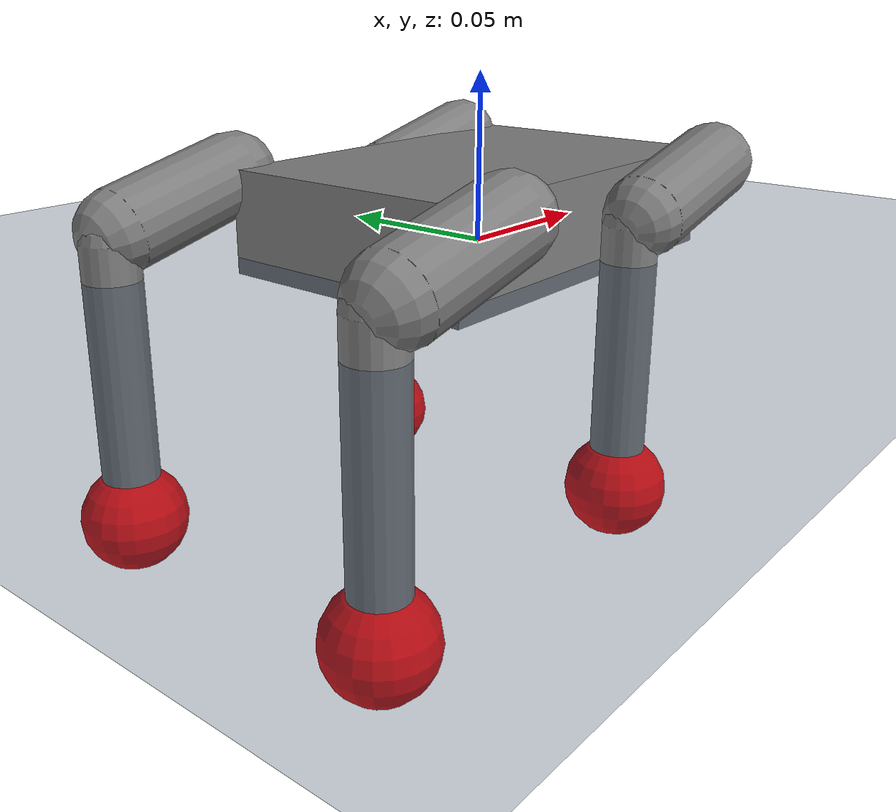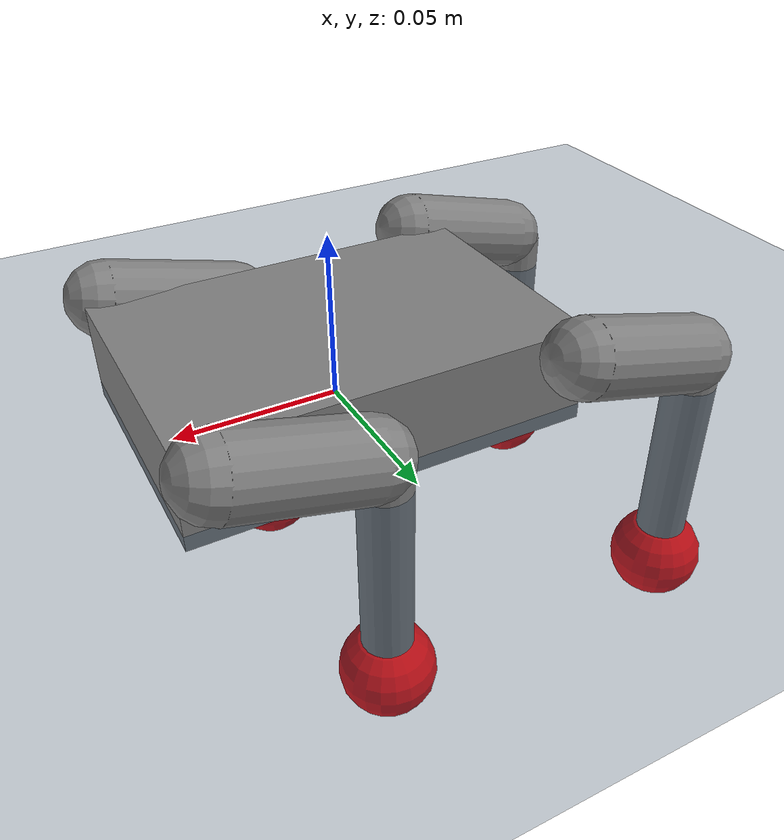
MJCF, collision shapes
<mujoco model="bittle_scene">
  <include file="bittle_adapted.xml"/>

  <statistic center="0 0 0.08" extent="0.6"/>

  <visual>
    <headlight diffuse="0.6 0.6 0.6" ambient="0.3 0.3 0.3" specular="0 0 0"/>
    <rgba haze="0.15 0.25 0.35 1"/>
    <global azimuth="120" elevation="-20"/>
  </visual>

  <asset>
    <texture type="skybox" builtin="gradient" rgb1="0.3 0.5 0.7" rgb2="0 0 0" width="512" height="3072"/>
    <texture type="2d" name="groundplane" builtin="checker" mark="edge" rgb1="0.2 0.3 0.4" rgb2="0.1 0.2 0.3"
      markrgb="0.8 0.8 0.8" width="300" height="300"/>
    <material name="groundplane" texture="groundplane" texuniform="true" texrepeat="5 5" reflectance="0.2"/>
  </asset>

  <worldbody>
    <light pos="0 0 1.5" dir="0 0 -1" directional="true"/>
    <camera name="track" pos="0.6 -0.8 0.4" xyaxes="0.866 0.500 0.000 -0.171 0.296 0.940" mode="trackcom"/>
    <camera name="default" pos="0.4 -0.6 0.3" xyaxes="0.866 0.500 0.000 -0.171 0.296 0.940"/>
    <geom name="floor" size="0 0 0.05" type="plane" material="groundplane"/>
  </worldbody>

  <!-- Home keyframe with standing pose -->
  <keyframe>
    <key name="home"
      qpos="0 0 0.15
            1 0 0 0
            0.0 0.8
            0.0 0.8
            0.0 0.8
            0.0 0.8
            0.0"
      ctrl="0.0 0.8
            0.0 0.8
            0.0 0.8
            0.0 0.8
            0.0"/>
  </keyframe>
</mujoco>

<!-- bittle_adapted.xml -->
<mujoco model="bittle_adapted">
  <compiler angle="radian" meshdir="../assets/descriptions/bittle/meshes/stl/" autolimits="true"/>

  <option iterations="1" ls_iterations="5">
    <flag eulerdamp="disable"/>
  </option>

  <!-- Default classes for organized parameters -->
  <default>
    <default class="bittle">
      <geom contype="0" conaffinity="0" type="mesh"/>

      <!-- Collision geometry defaults -->
      <default class="bittle/collision">
        <geom group="3" contype="1" conaffinity="1"/>
        <default class="bittle/collision/foot">
          <geom type="sphere" size="0.015" rgba="1 0 0 1"
                solimp="0.015 1 0.031" friction="0.8 0.02 0.01"/>
        </default>
      </default>

      <!-- Joint defaults -->
      <joint damping="0.15" armature="0.008"/>

      <!-- Actuator defaults -->
      <general forcerange="-5 5" biastype="affine"
               gainprm="15.0 0 0" biasprm="0 -15.0 -0.5"/>

      <!-- Shoulder joints (abduction-like) -->
      <default class="bittle/shoulder">
        <joint range="-0.7 0.7"/>
        <general ctrlrange="-0.6 0.6"/>
      </default>

      <!-- Thigh joints (hip-like) -->
      <default class="bittle/thigh">
        <joint range="-1.5 1.5"/>
        <general ctrlrange="-1.4 1.4"/>
      </default>
    </default>
  </default>

  <asset>
    <mesh name="base_link" content_type="model/stl" file="base_link.stl" scale="0.001 0.001 0.001"/>
    <mesh name="front__1" content_type="model/stl" file="front__1.stl" scale="0.001 0.001 0.001"/>
    <mesh name="rear__1" content_type="model/stl" file="rear__1.stl" scale="0.001 0.001 0.001"/>
    <mesh name="servo_rfs_1" content_type="model/stl" file="servo_rfs_1.stl" scale="0.001 0.001 0.001"/>
    <mesh name="servo_rrs__1" content_type="model/stl" file="servo_rrs__1.stl" scale="0.001 0.001 0.001"/>
    <mesh name="c_neck__1" content_type="model/stl" file="c_neck__1.stl" scale="0.001 0.001 0.001"/>
    <mesh name="head__1" content_type="model/stl" file="head__1.stl" scale="0.001 0.001 0.001"/>
    <mesh name="jaw_1" content_type="model/stl" file="jaw_1.stl" scale="0.001 0.001 0.001"/>
    <mesh name="tho_rf__1" content_type="model/stl" file="tho_rf__1.stl" scale="0.001 0.001 0.001"/>
    <mesh name="servo_neck__1" content_type="model/stl" file="servo_neck__1.stl" scale="0.001 0.001 0.001"/>
    <mesh name="tube__1" content_type="model/stl" file="tube__1.stl" scale="0.001 0.001 0.001"/>
    <mesh name="th_rf_1" content_type="model/stl" file="th_rf_1.stl" scale="0.001 0.001 0.001"/>
    <mesh name="c_thorf_1" content_type="model/stl" file="c_thorf_1.stl" scale="0.001 0.001 0.001"/>
    <mesh name="servo_lfs_1" content_type="model/stl" file="servo_lfs_1.stl" scale="0.001 0.001 0.001"/>
    <mesh name="servo_lrs__1" content_type="model/stl" file="servo_lrs__1.stl" scale="0.001 0.001 0.001"/>
    <mesh name="a_1" content_type="model/stl" file="a_1.stl" scale="0.001 0.001 0.001"/>
    <mesh name="b__1" content_type="model/stl" file="b__1.stl" scale="0.001 0.001 0.001"/>
    <mesh name="c_1" content_type="model/stl" file="c_1.stl" scale="0.001 0.001 0.001"/>
    <mesh name="d_1" content_type="model/stl" file="d_1.stl" scale="0.001 0.001 0.001"/>
    <mesh name="e_1" content_type="model/stl" file="e_1.stl" scale="0.001 0.001 0.001"/>
    <mesh name="f_1" content_type="model/stl" file="f_1.stl" scale="0.001 0.001 0.001"/>
    <mesh name="c_thrf__1" content_type="model/stl" file="c_thrf__1.stl" scale="0.001 0.001 0.001"/>
    <mesh name="g_1" content_type="model/stl" file="g_1.stl" scale="0.001 0.001 0.001"/>
    <mesh name="h__1" content_type="model/stl" file="h__1.stl" scale="0.001 0.001 0.001"/>
    <mesh name="i_1" content_type="model/stl" file="i_1.stl" scale="0.001 0.001 0.001"/>
    <mesh name="j__1" content_type="model/stl" file="j__1.stl" scale="0.001 0.001 0.001"/>
    <mesh name="k_1" content_type="model/stl" file="k_1.stl" scale="0.001 0.001 0.001"/>
    <mesh name="l_1" content_type="model/stl" file="l_1.stl" scale="0.001 0.001 0.001"/>
    <mesh name="shank_rf_1" content_type="model/stl" file="shank_rf_1.stl" scale="0.001 0.001 0.001"/>
    <mesh name="shank_rf_1_convex" content_type="model/stl" file="shank_rf_1_convex.stl" scale="0.001 0.001 0.001"/>
    <mesh name="servos_rf_1" content_type="model/stl" file="servos_rf_1.stl" scale="0.001 0.001 0.001"/>
    <mesh name="tho_rr_1" content_type="model/stl" file="tho_rr_1.stl" scale="0.001 0.001 0.001"/>
    <mesh name="tube_rr_1" content_type="model/stl" file="tube_rr_1.stl" scale="0.001 0.001 0.001"/>
    <mesh name="th_rr_1" content_type="model/stl" file="th_rr_1.stl" scale="0.001 0.001 0.001"/>
    <mesh name="c_thorr_1" content_type="model/stl" file="c_thorr_1.stl" scale="0.001 0.001 0.001"/>
    <mesh name="shank_rr_1" content_type="model/stl" file="shank_rr_1.stl" scale="0.001 0.001 0.001"/>
    <mesh name="shank_rr_1_convex" content_type="model/stl" file="shank_rr_1_convex.stl" scale="0.001 0.001 0.001"/>
    <mesh name="c_thrr_1" content_type="model/stl" file="c_thrr_1.stl" scale="0.001 0.001 0.001"/>
    <mesh name="servos_rr_1" content_type="model/stl" file="servos_rr_1.stl" scale="0.001 0.001 0.001"/>
    <mesh name="tho_lf_1" content_type="model/stl" file="tho_lf_1.stl" scale="0.001 0.001 0.001"/>
    <mesh name="tube_lf_1" content_type="model/stl" file="tube_lf_1.stl" scale="0.001 0.001 0.001"/>
    <mesh name="th_lf_1" content_type="model/stl" file="th_lf_1.stl" scale="0.001 0.001 0.001"/>
    <mesh name="c_tholf_1" content_type="model/stl" file="c_tholf_1.stl" scale="0.001 0.001 0.001"/>
    <mesh name="shank_lf_1" content_type="model/stl" file="shank_lf_1.stl" scale="0.001 0.001 0.001"/>
    <mesh name="shank_lf_1_convex" content_type="model/stl" file="shank_lf_1_convex.stl" scale="0.001 0.001 0.001"/>
    <mesh name="c_thlf_1" content_type="model/stl" file="c_thlf_1.stl" scale="0.001 0.001 0.001"/>
    <mesh name="servos_lf_1" content_type="model/stl" file="servos_lf_1.stl" scale="0.001 0.001 0.001"/>
    <mesh name="tho_lr_1" content_type="model/stl" file="tho_lr_1.stl" scale="0.001 0.001 0.001"/>
    <mesh name="tube_lr_1" content_type="model/stl" file="tube_lr_1.stl" scale="0.001 0.001 0.001"/>
    <mesh name="th_lr__1" content_type="model/stl" file="th_lr__1.stl" scale="0.001 0.001 0.001"/>
    <mesh name="c_tholr__1" content_type="model/stl" file="c_tholr__1.stl" scale="0.001 0.001 0.001"/>
    <mesh name="shank_lr_1" content_type="model/stl" file="shank_lr_1.stl" scale="0.001 0.001 0.001"/>
    <mesh name="shank_lr_1_convex" content_type="model/stl" file="shank_lr_1_convex.stl" scale="0.001 0.001 0.001"/>
    <mesh name="c_thlr_1" content_type="model/stl" file="c_thlr_1.stl" scale="0.001 0.001 0.001"/>
    <mesh name="servos_lr_1" content_type="model/stl" file="servos_lr_1.stl" scale="0.001 0.001 0.001"/>
    <mesh name="logo_5_1" content_type="model/stl" file="logo_5_1.stl" scale="0.001 0.001 0.001"/>
    <mesh name="logo_1_1" content_type="model/stl" file="logo_1_1.stl" scale="0.001 0.001 0.001"/>
    <mesh name="logo_2_1" content_type="model/stl" file="logo_2_1.stl" scale="0.001 0.001 0.001"/>
    <mesh name="logo_3_1" content_type="model/stl" file="logo_3_1.stl" scale="0.001 0.001 0.001"/>
    <mesh name="logo_4_1" content_type="model/stl" file="logo_4_1.stl" scale="0.001 0.001 0.001"/>
    <mesh name="cover_1" content_type="model/stl" file="cover_1.stl" scale="0.001 0.001 0.001"/>
    <mesh name="battery_1" content_type="model/stl" file="battery_1.stl" scale="0.001 0.001 0.001"/>
    <mesh name="screw_16_1" content_type="model/stl" file="screw_16_1.stl" scale="0.001 0.001 0.001"/>
    <mesh name="screw_7_1" content_type="model/stl" file="screw_7_1.stl" scale="0.001 0.001 0.001"/>
    <mesh name="screw_1_1" content_type="model/stl" file="screw_1_1.stl" scale="0.001 0.001 0.001"/>
    <mesh name="screw_15_1" content_type="model/stl" file="screw_15_1.stl" scale="0.001 0.001 0.001"/>
    <mesh name="screw_5_1" content_type="model/stl" file="screw_5_1.stl" scale="0.001 0.001 0.001"/>
    <mesh name="screw_10_1" content_type="model/stl" file="screw_10_1.stl" scale="0.001 0.001 0.001"/>
    <mesh name="screw_13_1" content_type="model/stl" file="screw_13_1.stl" scale="0.001 0.001 0.001"/>
    <mesh name="screw_14_1" content_type="model/stl" file="screw_14_1.stl" scale="0.001 0.001 0.001"/>
    <mesh name="screw_9_1" content_type="model/stl" file="screw_9_1.stl" scale="0.001 0.001 0.001"/>
    <mesh name="screw_19_1" content_type="model/stl" file="screw_19_1.stl" scale="0.001 0.001 0.001"/>
    <mesh name="screw_11_1" content_type="model/stl" file="screw_11_1.stl" scale="0.001 0.001 0.001"/>
    <mesh name="screw_2_1" content_type="model/stl" file="screw_2_1.stl" scale="0.001 0.001 0.001"/>
    <mesh name="screw_20_1" content_type="model/stl" file="screw_20_1.stl" scale="0.001 0.001 0.001"/>
    <mesh name="screw_3_1" content_type="model/stl" file="screw_3_1.stl" scale="0.001 0.001 0.001"/>
    <mesh name="screw_12_1" content_type="model/stl" file="screw_12_1.stl" scale="0.001 0.001 0.001"/>
    <mesh name="screwm_1_1" content_type="model/stl" file="screwm_1_1.stl" scale="0.001 0.001 0.001"/>
    <mesh name="screwm_2_1" content_type="model/stl" file="screwm_2_1.stl" scale="0.001 0.001 0.001"/>
    <mesh name="screwm_3_1" content_type="model/stl" file="screwm_3_1.stl" scale="0.001 0.001 0.001"/>
    <mesh name="screwm_4_1" content_type="model/stl" file="screwm_4_1.stl" scale="0.001 0.001 0.001"/>
    <mesh name="screwm_5_1" content_type="model/stl" file="screwm_5_1.stl" scale="0.001 0.001 0.001"/>
    <mesh name="screwm_6_1" content_type="model/stl" file="screwm_6_1.stl" scale="0.001 0.001 0.001"/>
    <mesh name="screwm_8_1" content_type="model/stl" file="screwm_8_1.stl" scale="0.001 0.001 0.001"/>
    <mesh name="screwm_7_1" content_type="model/stl" file="screwm_7_1.stl" scale="0.001 0.001 0.001"/>
    <mesh name="screw_18_1" content_type="model/stl" file="screw_18_1.stl" scale="0.001 0.001 0.001"/>
    <mesh name="screw_4_1" content_type="model/stl" file="screw_4_1.stl" scale="0.001 0.001 0.001"/>
    <mesh name="screw_17_1" content_type="model/stl" file="screw_17_1.stl" scale="0.001 0.001 0.001"/>
    <mesh name="screw_21_1" content_type="model/stl" file="screw_21_1.stl" scale="0.001 0.001 0.001"/>
    <mesh name="screw_6_1" content_type="model/stl" file="screw_6_1.stl" scale="0.001 0.001 0.001"/>
    <mesh name="screw_8_1" content_type="model/stl" file="screw_8_1.stl" scale="0.001 0.001 0.001"/>
  </asset>

  <worldbody>
    <!-- Main torso body with freejoint -->
    <body name="torso" childclass="bittle">
      <freejoint name="torso"/>

      <!-- IMU and tracking sites -->
      <site name="imu_frame" pos="0 0 0.01"/>
      <site name="base_frame"/>

      <!-- Visual geometry for torso -->
      <geom type="mesh" group="1" density="0" rgba="0.7 0.7 0.7 1" mesh="base_link"/>
      <geom type="mesh" rgba="0.7 0.7 0.7 1" mesh="base_link"/>
      <geom type="mesh" group="1" density="0" rgba="0.7 0.7 0.7 1" mesh="front__1"/>
      <geom type="mesh" rgba="0.7 0.7 0.7 1" mesh="front__1"/>
      <geom type="mesh" group="1" density="0" rgba="0.7 0.7 0.7 1" mesh="rear__1"/>
      <geom type="mesh" rgba="0.7 0.7 0.7 1" mesh="rear__1"/>
      <geom type="mesh" group="1" density="0" rgba="0.7 0.7 0.7 1" mesh="servo_rfs_1"/>
      <geom type="mesh" rgba="0.7 0.7 0.7 1" mesh="servo_rfs_1"/>
      <geom type="mesh" group="1" density="0" rgba="0.7 0.7 0.7 1" mesh="screw_16_1"/>
      <geom type="mesh" rgba="0.7 0.7 0.7 1" mesh="screw_16_1"/>
      <geom type="mesh" group="1" density="0" rgba="0.7 0.7 0.7 1" mesh="screw_7_1"/>
      <geom type="mesh" rgba="0.7 0.7 0.7 1" mesh="screw_7_1"/>
      <geom type="mesh" group="1" density="0" rgba="0.7 0.7 0.7 1" mesh="servo_rrs__1"/>
      <geom type="mesh" rgba="0.7 0.7 0.7 1" mesh="servo_rrs__1"/>
      <geom type="mesh" group="1" density="0" rgba="0.7 0.7 0.7 1" mesh="screw_1_1"/>
      <geom type="mesh" rgba="0.7 0.7 0.7 1" mesh="screw_1_1"/>
      <geom type="mesh" group="1" density="0" rgba="0.7 0.7 0.7 1" mesh="screw_15_1"/>
      <geom type="mesh" rgba="0.7 0.7 0.7 1" mesh="screw_15_1"/>
      <geom type="mesh" group="1" density="0" rgba="0.7 0.7 0.7 1" mesh="c_neck__1"/>
      <geom type="mesh" rgba="0.7 0.7 0.7 1" mesh="c_neck__1"/>
      <geom type="mesh" group="1" density="0" rgba="0.7 0.7 0.7 1" mesh="screw_17_1"/>
      <geom type="mesh" rgba="0.7 0.7 0.7 1" mesh="screw_17_1"/>
      <geom type="mesh" group="1" density="0" rgba="0.7 0.7 0.7 1" mesh="screw_21_1"/>
      <geom type="mesh" rgba="0.7 0.7 0.7 1" mesh="screw_21_1"/>
      <geom type="mesh" group="1" density="0" rgba="0.7 0.7 0.7 1" mesh="screw_6_1"/>
      <geom type="mesh" rgba="0.7 0.7 0.7 1" mesh="screw_6_1"/>
      <geom type="mesh" group="1" density="0" rgba="0.7 0.7 0.7 1" mesh="servo_lfs_1"/>
      <geom type="mesh" rgba="0.7 0.7 0.7 1" mesh="servo_lfs_1"/>
      <geom type="mesh" group="1" density="0" rgba="0.7 0.7 0.7 1" mesh="screw_5_1"/>
      <geom type="mesh" rgba="0.7 0.7 0.7 1" mesh="screw_5_1"/>
      <geom type="mesh" group="1" density="0" rgba="0.7 0.7 0.7 1" mesh="screw_10_1"/>
      <geom type="mesh" rgba="0.7 0.7 0.7 1" mesh="screw_10_1"/>
      <geom type="mesh" group="1" density="0" rgba="0.7 0.7 0.7 1" mesh="servo_lrs__1"/>
      <geom type="mesh" rgba="0.7 0.7 0.7 1" mesh="servo_lrs__1"/>
      <geom type="mesh" group="1" density="0" rgba="0.7 0.7 0.7 1" mesh="screw_13_1"/>
      <geom type="mesh" rgba="0.7 0.7 0.7 1" mesh="screw_13_1"/>
      <geom type="mesh" group="1" density="0" rgba="0.7 0.7 0.7 1" mesh="screw_14_1"/>
      <geom type="mesh" rgba="0.7 0.7 0.7 1" mesh="screw_14_1"/>
      <geom type="mesh" group="1" density="0" rgba="0.7 0.7 0.7 1" mesh="a_1"/>
      <geom type="mesh" rgba="0.7 0.7 0.7 1" mesh="a_1"/>
      <geom type="mesh" group="1" density="0" rgba="0.7 0.7 0.7 1" mesh="b__1"/>
      <geom type="mesh" rgba="0.7 0.7 0.7 1" mesh="b__1"/>
      <geom type="mesh" group="1" density="0" rgba="0.7 0.7 0.7 1" mesh="c_1"/>
      <geom type="mesh" rgba="0.7 0.7 0.7 1" mesh="c_1"/>
      <geom type="mesh" group="1" density="0" rgba="0.7 0.7 0.7 1" mesh="d_1"/>
      <geom type="mesh" rgba="0.7 0.7 0.7 1" mesh="d_1"/>
      <geom type="mesh" group="1" density="0" rgba="0.7 0.7 0.7 1" mesh="e_1"/>
      <geom type="mesh" rgba="0.7 0.7 0.7 1" mesh="e_1"/>
      <geom type="mesh" group="1" density="0" rgba="0.7 0.7 0.7 1" mesh="f_1"/>
      <geom type="mesh" rgba="0.7 0.7 0.7 1" mesh="f_1"/>
      <geom type="mesh" group="1" density="0" rgba="0.7 0.7 0.7 1" mesh="g_1"/>
      <geom type="mesh" rgba="0.7 0.7 0.7 1" mesh="g_1"/>
      <geom type="mesh" group="1" density="0" rgba="0.7 0.7 0.7 1" mesh="h__1"/>
      <geom type="mesh" rgba="0.7 0.7 0.7 1" mesh="h__1"/>
      <geom type="mesh" group="1" density="0" rgba="0.7 0.7 0.7 1" mesh="i_1"/>
      <geom type="mesh" rgba="0.7 0.7 0.7 1" mesh="i_1"/>
      <geom type="mesh" group="1" density="0" rgba="0.7 0.7 0.7 1" mesh="j__1"/>
      <geom type="mesh" rgba="0.7 0.7 0.7 1" mesh="j__1"/>
      <geom type="mesh" group="1" density="0" rgba="0.7 0.7 0.7 1" mesh="k_1"/>
      <geom type="mesh" rgba="0.7 0.7 0.7 1" mesh="k_1"/>
      <geom type="mesh" group="1" density="0" rgba="0.7 0.7 0.7 1" mesh="l_1"/>
      <geom type="mesh" rgba="0.7 0.7 0.7 1" mesh="l_1"/>
      <geom type="mesh" group="1" density="0" rgba="0.7 0.7 0.7 1" mesh="cover_1"/>
      <geom type="mesh" rgba="0.7 0.7 0.7 1" mesh="cover_1"/>
      <geom type="mesh" group="1" density="0" rgba="0.7 0.7 0.7 1" mesh="logo_5_1"/>
      <geom type="mesh" rgba="0.7 0.7 0.7 1" mesh="logo_5_1"/>
      <geom type="mesh" group="1" density="0" rgba="0.7 0.7 0.7 1" mesh="logo_1_1"/>
      <geom type="mesh" rgba="0.7 0.7 0.7 1" mesh="logo_1_1"/>
      <geom type="mesh" group="1" density="0" rgba="0.7 0.7 0.7 1" mesh="logo_2_1"/>
      <geom type="mesh" rgba="0.7 0.7 0.7 1" mesh="logo_2_1"/>
      <geom type="mesh" group="1" density="0" rgba="0.7 0.7 0.7 1" mesh="logo_3_1"/>
      <geom type="mesh" rgba="0.7 0.7 0.7 1" mesh="logo_3_1"/>
      <geom type="mesh" group="1" density="0" rgba="0.7 0.7 0.7 1" mesh="logo_4_1"/>
      <geom type="mesh" rgba="0.7 0.7 0.7 1" mesh="logo_4_1"/>
      <geom type="mesh" group="1" density="0" rgba="0.7 0.7 0.7 1" mesh="battery_1"/>
      <geom type="mesh" rgba="0.7 0.7 0.7 1" mesh="battery_1"/>

      <!-- Collision geometry for torso -->
      <geom type="box" size="0.06 0.04 0.015" pos="0 0 0.01" class="bittle/collision"/>

      <!-- Head/Neck (optional, can be removed if not needed) -->
      <body name="servo_neck__1" pos="0.047554 0 0.035941">
        <joint name="neck_joint" pos="0 0 0" axis="-0.5 0 -0.866025" range="-0.5 0.5"/>
        <geom pos="-0.047554 0 -0.035941" quat="1 0 0 0" type="mesh" group="1" density="0" rgba="0.7 0.7 0.7 1" mesh="servo_neck__1"/>
        <geom pos="-0.047554 0 -0.035941" quat="1 0 0 0" type="mesh" rgba="0.7 0.7 0.7 1" mesh="servo_neck__1"/>
        <geom pos="-0.047554 0 -0.035941" quat="1 0 0 0" type="mesh" group="1" density="0" rgba="0.7 0.7 0.7 1" mesh="jaw_1"/>
        <geom pos="-0.047554 0 -0.035941" quat="1 0 0 0" type="mesh" rgba="0.7 0.7 0.7 1" mesh="jaw_1"/>
        <geom pos="-0.047554 0 -0.035941" quat="1 0 0 0" type="mesh" group="1" density="0" rgba="0.7 0.7 0.7 1" mesh="head__1"/>
        <geom pos="-0.047554 0 -0.035941" quat="1 0 0 0" type="mesh" rgba="0.7 0.7 0.7 1" mesh="head__1"/>
        <geom pos="-0.047554 0 -0.035941" type="mesh" group="1" density="0" rgba="0.7 0.7 0.7 1" mesh="screw_18_1"/>
        <geom pos="-0.047554 0 -0.035941" type="mesh" rgba="0.7 0.7 0.7 1" mesh="screw_18_1"/>
        <geom pos="-0.047554 0 -0.035941" type="mesh" group="1" density="0" rgba="0.7 0.7 0.7 1" mesh="screw_4_1"/>
        <geom pos="-0.047554 0 -0.035941" type="mesh" rgba="0.7 0.7 0.7 1" mesh="screw_4_1"/>
      </body>

      <!-- RIGHT FRONT LEG -->
      <body name="leg_front_right" pos="0.0525 -0.0485 0.022">
        <joint name="shoulder_front_right" pos="0 0 0" axis="0 1 0" class="bittle/shoulder"/>
        <geom pos="-0.0525 0.0485 -0.022" quat="1 0 0 0" type="mesh" group="1" density="0" rgba="0.7 0.7 0.7 1" mesh="c_thrf__1"/>
        <geom pos="-0.0525 0.0485 -0.022" quat="1 0 0 0" type="mesh" rgba="0.7 0.7 0.7 1" mesh="c_thrf__1"/>
        <geom pos="-0.0525 0.0485 -0.022" quat="1 0 0 0" type="mesh" group="1" density="0" rgba="0.7 0.7 0.7 1" mesh="th_rf_1"/>
        <geom pos="-0.0525 0.0485 -0.022" quat="1 0 0 0" type="mesh" rgba="0.7 0.7 0.7 1" mesh="th_rf_1"/>
        <geom pos="-0.0525 0.0485 -0.022" quat="1 0 0 0" type="mesh" group="1" density="0" rgba="0.7 0.7 0.7 1" mesh="tho_rf__1"/>
        <geom pos="-0.0525 0.0485 -0.022" quat="1 0 0 0" type="mesh" rgba="0.7 0.7 0.7 1" mesh="tho_rf__1"/>
        <geom pos="-0.0525 0.0485 -0.022" quat="1 0 0 0" type="mesh" group="1" density="0" rgba="0.7 0.7 0.7 1" mesh="c_thorf_1"/>
        <geom pos="-0.0525 0.0485 -0.022" quat="1 0 0 0" type="mesh" rgba="0.7 0.7 0.7 1" mesh="c_thorf_1"/>
        <geom pos="-0.0525 0.0485 -0.022" type="mesh" group="1" density="0" rgba="0.7 0.7 0.7 1" mesh="screwm_3_1"/>
        <geom pos="-0.0525 0.0485 -0.022" type="mesh" rgba="0.7 0.7 0.7 1" mesh="screwm_3_1"/>
        <geom pos="-0.0525 0.0485 -0.022" quat="1 0 0 0" type="mesh" group="1" density="0" rgba="0.7 0.7 0.7 1" mesh="tube__1"/>
        <geom pos="-0.0525 0.0485 -0.022" quat="1 0 0 0" type="mesh" rgba="0.7 0.7 0.7 1" mesh="tube__1"/>
        <geom pos="-0.0525 0.0485 -0.022" type="mesh" group="1" density="0" rgba="0.7 0.7 0.7 1" mesh="screwm_4_1"/>
        <geom pos="-0.0525 0.0485 -0.022" type="mesh" rgba="0.7 0.7 0.7 1" mesh="screwm_4_1"/>

        <!-- Upper leg collision -->
        <geom type="capsule" fromto="0 0 0 -0.04 0 -0.01" size="0.012" class="bittle/collision"/>

        <body name="lower_leg_front_right" pos="-0.044433 0.00142 -0.011906">
          <joint name="thigh_front_right" pos="0 0 0" axis="0 1 0" class="bittle/thigh"/>
          <geom pos="-0.008067 0.04708 -0.010094" quat="1 0 0 0" type="mesh" group="1" density="0" rgba="0.7 0.7 0.7 1" mesh="servos_rf_1"/>
          <geom pos="-0.008067 0.04708 -0.010094" quat="1 0 0 0" type="mesh" rgba="0.7 0.7 0.7 1" mesh="servos_rf_1"/>
          <geom pos="-0.008067 0.04708 -0.010094" quat="1 0 0 0" type="mesh" group="1" density="0" rgba="0.7 0.7 0.7 1" mesh="shank_rf_1"/>
          <geom pos="-0.008067 0.04708 -0.010094" quat="1 0 0 0" type="mesh" rgba="0.7 0.7 0.7 1" mesh="shank_rf_1_convex"/>
          <geom pos="-0.008067 0.04708 -0.010094" type="mesh" group="1" density="0" rgba="0.7 0.7 0.7 1" mesh="screw_9_1"/>
          <geom pos="-0.008067 0.04708 -0.010094" type="mesh" rgba="0.7 0.7 0.7 1" mesh="screw_9_1"/>
          <geom pos="-0.008067 0.04708 -0.010094" type="mesh" group="1" density="0" rgba="0.7 0.7 0.7 1" mesh="screw_8_1"/>
          <geom pos="-0.008067 0.04708 -0.010094" type="mesh" rgba="0.7 0.7 0.7 1" mesh="screw_8_1"/>

          <!-- Lower leg collision -->
          <geom type="capsule" fromto="0 0 0 0 0 -0.08" size="0.008" class="bittle/collision"/>

          <!-- Foot collision sphere -->
          <geom name="foot_front_right" pos="0 0 -0.08" class="bittle/collision/foot"/>
          <site name="foot_front_right" pos="0 0 -0.08"/>
        </body>
      </body>

      <!-- RIGHT REAR LEG -->
      <body name="leg_hind_right" pos="-0.0525 -0.0485 0.022">
        <joint name="shoulder_hind_right" pos="0 0 0" axis="0 -1 0" class="bittle/shoulder"/>
        <geom pos="0.0525 0.0485 -0.022" quat="1 0 0 0" type="mesh" group="1" density="0" rgba="0.7 0.7 0.7 1" mesh="c_thrr_1"/>
        <geom pos="0.0525 0.0485 -0.022" quat="1 0 0 0" type="mesh" rgba="0.7 0.7 0.7 1" mesh="c_thrr_1"/>
        <geom pos="0.0525 0.0485 -0.022" quat="1 0 0 0" type="mesh" group="1" density="0" rgba="0.7 0.7 0.7 1" mesh="th_rr_1"/>
        <geom pos="0.0525 0.0485 -0.022" quat="1 0 0 0" type="mesh" rgba="0.7 0.7 0.7 1" mesh="th_rr_1"/>
        <geom pos="0.0525 0.0485 -0.022" quat="1 0 0 0" type="mesh" group="1" density="0" rgba="0.7 0.7 0.7 1" mesh="tho_rr_1"/>
        <geom pos="0.0525 0.0485 -0.022" quat="1 0 0 0" type="mesh" rgba="0.7 0.7 0.7 1" mesh="tho_rr_1"/>
        <geom pos="0.0525 0.0485 -0.022" quat="1 0 0 0" type="mesh" group="1" density="0" rgba="0.7 0.7 0.7 1" mesh="c_thorr_1"/>
        <geom pos="0.0525 0.0485 -0.022" quat="1 0 0 0" type="mesh" rgba="0.7 0.7 0.7 1" mesh="c_thorr_1"/>
        <geom pos="0.0525 0.0485 -0.022" type="mesh" group="1" density="0" rgba="0.7 0.7 0.7 1" mesh="screwm_1_1"/>
        <geom pos="0.0525 0.0485 -0.022" type="mesh" rgba="0.7 0.7 0.7 1" mesh="screwm_1_1"/>
        <geom pos="0.0525 0.0485 -0.022" quat="1 0 0 0" type="mesh" group="1" density="0" rgba="0.7 0.7 0.7 1" mesh="tube_rr_1"/>
        <geom pos="0.0525 0.0485 -0.022" quat="1 0 0 0" type="mesh" rgba="0.7 0.7 0.7 1" mesh="tube_rr_1"/>
        <geom pos="0.0525 0.0485 -0.022" type="mesh" group="1" density="0" rgba="0.7 0.7 0.7 1" mesh="screwm_2_1"/>
        <geom pos="0.0525 0.0485 -0.022" type="mesh" rgba="0.7 0.7 0.7 1" mesh="screwm_2_1"/>

        <geom type="capsule" fromto="0 0 0 -0.04 0 -0.01" size="0.012" class="bittle/collision"/>

        <body name="lower_leg_hind_right" pos="-0.044433 0.00142 -0.011906">
          <joint name="thigh_hind_right" pos="0 0 0" axis="0 1 0" class="bittle/thigh"/>
          <geom pos="0.096933 0.04708 -0.010094" quat="1 0 0 0" type="mesh" group="1" density="0" rgba="0.7 0.7 0.7 1" mesh="servos_rr_1"/>
          <geom pos="0.096933 0.04708 -0.010094" quat="1 0 0 0" type="mesh" rgba="0.7 0.7 0.7 1" mesh="servos_rr_1"/>
          <geom pos="0.096933 0.04708 -0.010094" quat="1 0 0 0" type="mesh" group="1" density="0" rgba="0.7 0.7 0.7 1" mesh="shank_rr_1"/>
          <geom pos="0.096933 0.04708 -0.010094" quat="1 0 0 0" type="mesh" rgba="0.7 0.7 0.7 1" mesh="shank_rr_1_convex"/>
          <geom pos="0.096933 0.04708 -0.010094" type="mesh" group="1" density="0" rgba="0.7 0.7 0.7 1" mesh="screw_19_1"/>
          <geom pos="0.096933 0.04708 -0.010094" type="mesh" rgba="0.7 0.7 0.7 1" mesh="screw_19_1"/>
          <geom pos="0.096933 0.04708 -0.010094" type="mesh" group="1" density="0" rgba="0.7 0.7 0.7 1" mesh="screw_11_1"/>
          <geom pos="0.096933 0.04708 -0.010094" type="mesh" rgba="0.7 0.7 0.7 1" mesh="screw_11_1"/>

          <geom type="capsule" fromto="0 0 0 0 0 -0.08" size="0.008" class="bittle/collision"/>
          <geom name="foot_hind_right" pos="0 0 -0.08" class="bittle/collision/foot"/>
          <site name="foot_hind_right" pos="0 0 -0.08"/>
        </body>
      </body>

      <!-- LEFT FRONT LEG -->
      <body name="leg_front_left" pos="0.0525 0.0485 0.022">
        <joint name="shoulder_front_left" pos="0 0 0" axis="0 1 0" class="bittle/shoulder"/>
        <geom pos="-0.0525 -0.0485 -0.022" quat="1 0 0 0" type="mesh" group="1" density="0" rgba="0.7 0.7 0.7 1" mesh="c_thlf_1"/>
        <geom pos="-0.0525 -0.0485 -0.022" quat="1 0 0 0" type="mesh" rgba="0.7 0.7 0.7 1" mesh="c_thlf_1"/>
        <geom pos="-0.0525 -0.0485 -0.022" quat="1 0 0 0" type="mesh" group="1" density="0" rgba="0.7 0.7 0.7 1" mesh="th_lf_1"/>
        <geom pos="-0.0525 -0.0485 -0.022" quat="1 0 0 0" type="mesh" rgba="0.7 0.7 0.7 1" mesh="th_lf_1"/>
        <geom pos="-0.0525 -0.0485 -0.022" quat="1 0 0 0" type="mesh" group="1" density="0" rgba="0.7 0.7 0.7 1" mesh="tho_lf_1"/>
        <geom pos="-0.0525 -0.0485 -0.022" quat="1 0 0 0" type="mesh" rgba="0.7 0.7 0.7 1" mesh="tho_lf_1"/>
        <geom pos="-0.0525 -0.0485 -0.022" quat="1 0 0 0" type="mesh" group="1" density="0" rgba="0.7 0.7 0.7 1" mesh="c_tholf_1"/>
        <geom pos="-0.0525 -0.0485 -0.022" quat="1 0 0 0" type="mesh" rgba="0.7 0.7 0.7 1" mesh="c_tholf_1"/>
        <geom pos="-0.0525 -0.0485 -0.022" type="mesh" group="1" density="0" rgba="0.7 0.7 0.7 1" mesh="screwm_6_1"/>
        <geom pos="-0.0525 -0.0485 -0.022" type="mesh" rgba="0.7 0.7 0.7 1" mesh="screwm_6_1"/>
        <geom pos="-0.0525 -0.0485 -0.022" quat="1 0 0 0" type="mesh" group="1" density="0" rgba="0.7 0.7 0.7 1" mesh="tube_lf_1"/>
        <geom pos="-0.0525 -0.0485 -0.022" quat="1 0 0 0" type="mesh" rgba="0.7 0.7 0.7 1" mesh="tube_lf_1"/>
        <geom pos="-0.0525 -0.0485 -0.022" type="mesh" group="1" density="0" rgba="0.7 0.7 0.7 1" mesh="screwm_5_1"/>
        <geom pos="-0.0525 -0.0485 -0.022" type="mesh" rgba="0.7 0.7 0.7 1" mesh="screwm_5_1"/>

        <geom type="capsule" fromto="0 0 0 -0.04 0 -0.01" size="0.012" class="bittle/collision"/>

        <body name="lower_leg_front_left" pos="-0.044433 -0.00142 -0.011906">
          <joint name="thigh_front_left" pos="0 0 0" axis="0 1 0" class="bittle/thigh"/>
          <geom pos="-0.008067 -0.04708 -0.010094" quat="1 0 0 0" type="mesh" group="1" density="0" rgba="0.7 0.7 0.7 1" mesh="servos_lf_1"/>
          <geom pos="-0.008067 -0.04708 -0.010094" quat="1 0 0 0" type="mesh" rgba="0.7 0.7 0.7 1" mesh="servos_lf_1"/>
          <geom pos="-0.008067 -0.04708 -0.010094" quat="1 0 0 0" type="mesh" group="1" density="0" rgba="0.7 0.7 0.7 1" mesh="shank_lf_1"/>
          <geom pos="-0.008067 -0.04708 -0.010094" quat="1 0 0 0" type="mesh" rgba="0.7 0.7 0.7 1" mesh="shank_lf_1_convex"/>
          <geom pos="-0.008067 -0.04708 -0.010094" type="mesh" group="1" density="0" rgba="0.7 0.7 0.7 1" mesh="screw_2_1"/>
          <geom pos="-0.008067 -0.04708 -0.010094" type="mesh" rgba="0.7 0.7 0.7 1" mesh="screw_2_1"/>
          <geom pos="-0.008067 -0.04708 -0.010094" type="mesh" group="1" density="0" rgba="0.7 0.7 0.7 1" mesh="screw_20_1"/>
          <geom pos="-0.008067 -0.04708 -0.010094" type="mesh" rgba="0.7 0.7 0.7 1" mesh="screw_20_1"/>

          <geom type="capsule" fromto="0 0 0 0 0 -0.08" size="0.008" class="bittle/collision"/>
          <geom name="foot_front_left" pos="0 0 -0.08" class="bittle/collision/foot"/>
          <site name="foot_front_left" pos="0 0 -0.08"/>
        </body>
      </body>

      <!-- LEFT REAR LEG -->
      <body name="leg_hind_left" pos="-0.0525 0.0485 0.022">
        <joint name="shoulder_hind_left" pos="0 0 0" axis="0 -1 0" class="bittle/shoulder"/>
        <geom pos="0.0525 -0.0485 -0.022" quat="1 0 0 0" type="mesh" group="1" density="0" rgba="0.7 0.7 0.7 1" mesh="c_thlr_1"/>
        <geom pos="0.0525 -0.0485 -0.022" quat="1 0 0 0" type="mesh" rgba="0.7 0.7 0.7 1" mesh="c_thlr_1"/>
        <geom pos="0.0525 -0.0485 -0.022" quat="1 0 0 0" type="mesh" group="1" density="0" rgba="0.7 0.7 0.7 1" mesh="th_lr__1"/>
        <geom pos="0.0525 -0.0485 -0.022" quat="1 0 0 0" type="mesh" rgba="0.7 0.7 0.7 1" mesh="th_lr__1"/>
        <geom pos="0.0525 -0.0485 -0.022" quat="1 0 0 0" type="mesh" group="1" density="0" rgba="0.7 0.7 0.7 1" mesh="tho_lr_1"/>
        <geom pos="0.0525 -0.0485 -0.022" quat="1 0 0 0" type="mesh" rgba="0.7 0.7 0.7 1" mesh="tho_lr_1"/>
        <geom pos="0.0525 -0.0485 -0.022" quat="1 0 0 0" type="mesh" group="1" density="0" rgba="0.7 0.7 0.7 1" mesh="c_tholr__1"/>
        <geom pos="0.0525 -0.0485 -0.022" quat="1 0 0 0" type="mesh" rgba="0.7 0.7 0.7 1" mesh="c_tholr__1"/>
        <geom pos="0.0525 -0.0485 -0.022" type="mesh" group="1" density="0" rgba="0.7 0.7 0.7 1" mesh="screwm_8_1"/>
        <geom pos="0.0525 -0.0485 -0.022" type="mesh" rgba="0.7 0.7 0.7 1" mesh="screwm_8_1"/>
        <geom pos="0.0525 -0.0485 -0.022" quat="1 0 0 0" type="mesh" group="1" density="0" rgba="0.7 0.7 0.7 1" mesh="tube_lr_1"/>
        <geom pos="0.0525 -0.0485 -0.022" quat="1 0 0 0" type="mesh" rgba="0.7 0.7 0.7 1" mesh="tube_lr_1"/>
        <geom pos="0.0525 -0.0485 -0.022" type="mesh" group="1" density="0" rgba="0.7 0.7 0.7 1" mesh="screwm_7_1"/>
        <geom pos="0.0525 -0.0485 -0.022" type="mesh" rgba="0.7 0.7 0.7 1" mesh="screwm_7_1"/>

        <geom type="capsule" fromto="0 0 0 -0.04 0 -0.01" size="0.012" class="bittle/collision"/>

        <body name="lower_leg_hind_left" pos="-0.044433 -0.001418 -0.011906">
          <joint name="thigh_hind_left" pos="0 0 0" axis="0 1 0" class="bittle/thigh"/>
          <geom pos="0.096933 -0.047082 -0.010094" quat="1 0 0 0" type="mesh" group="1" density="0" rgba="0.7 0.7 0.7 1" mesh="servos_lr_1"/>
          <geom pos="0.096933 -0.047082 -0.010094" quat="1 0 0 0" type="mesh" rgba="0.7 0.7 0.7 1" mesh="servos_lr_1"/>
          <geom pos="0.096933 -0.047082 -0.010094" quat="1 0 0 0" type="mesh" group="1" density="0" rgba="0.7 0.7 0.7 1" mesh="shank_lr_1"/>
          <geom pos="0.096933 -0.047082 -0.010094" quat="1 0 0 0" type="mesh" rgba="0.7 0.7 0.7 1" mesh="shank_lr_1_convex"/>
          <geom pos="0.096933 -0.047082 -0.010094" type="mesh" group="1" density="0" rgba="0.7 0.7 0.7 1" mesh="screw_3_1"/>
          <geom pos="0.096933 -0.047082 -0.010094" type="mesh" rgba="0.7 0.7 0.7 1" mesh="screw_3_1"/>
          <geom pos="0.096933 -0.047082 -0.010094" type="mesh" group="1" density="0" rgba="0.7 0.7 0.7 1" mesh="screw_12_1"/>
          <geom pos="0.096933 -0.047082 -0.010094" type="mesh" rgba="0.7 0.7 0.7 1" mesh="screw_12_1"/>

          <geom type="capsule" fromto="0 0 0 0 0 -0.08" size="0.008" class="bittle/collision"/>
          <geom name="foot_hind_left" pos="0 0 -0.08" class="bittle/collision/foot"/>
          <site name="foot_hind_left" pos="0 0 -0.08"/>
        </body>
      </body>
    </body>
  </worldbody>

  <!-- Actuators using general type with force-based control -->
  <actuator>
    <!-- Right Front Leg -->
    <general name="shoulder_front_right" joint="shoulder_front_right" class="bittle/shoulder"/>
    <general name="thigh_front_right" joint="thigh_front_right" class="bittle/thigh"/>

    <!-- Right Rear Leg -->
    <general name="shoulder_hind_right" joint="shoulder_hind_right" class="bittle/shoulder"/>
    <general name="thigh_hind_right" joint="thigh_hind_right" class="bittle/thigh"/>

    <!-- Left Front Leg -->
    <general name="shoulder_front_left" joint="shoulder_front_left" class="bittle/shoulder"/>
    <general name="thigh_front_left" joint="thigh_front_left" class="bittle/thigh"/>

    <!-- Left Rear Leg -->
    <general name="shoulder_hind_left" joint="shoulder_hind_left" class="bittle/shoulder"/>
    <general name="thigh_hind_left" joint="thigh_hind_left" class="bittle/thigh"/>

    <!-- Neck (optional) -->
    <general name="neck_joint" joint="neck_joint" forcerange="-2 2"
             gainprm="10.0 0 0" biasprm="0 -10.0 -0.5" ctrlrange="-0.4 0.4"/>
  </actuator>

  <!-- Sensors (similar to Barkour) -->
  <sensor>
    <!-- Joint positions -->
    <jointpos joint="shoulder_front_right" name="shoulder_front_right_pos"/>
    <jointpos joint="thigh_front_right" name="thigh_front_right_pos"/>
    <jointpos joint="shoulder_hind_right" name="shoulder_hind_right_pos"/>
    <jointpos joint="thigh_hind_right" name="thigh_hind_right_pos"/>
    <jointpos joint="shoulder_front_left" name="shoulder_front_left_pos"/>
    <jointpos joint="thigh_front_left" name="thigh_front_left_pos"/>
    <jointpos joint="shoulder_hind_left" name="shoulder_hind_left_pos"/>
    <jointpos joint="thigh_hind_left" name="thigh_hind_left_pos"/>

    <!-- Joint velocities -->
    <jointvel joint="shoulder_front_right" name="shoulder_front_right_vel"/>
    <jointvel joint="thigh_front_right" name="thigh_front_right_vel"/>
    <jointvel joint="shoulder_hind_right" name="shoulder_hind_right_vel"/>
    <jointvel joint="thigh_hind_right" name="thigh_hind_right_vel"/>
    <jointvel joint="shoulder_front_left" name="shoulder_front_left_vel"/>
    <jointvel joint="thigh_front_left" name="thigh_front_left_vel"/>
    <jointvel joint="shoulder_hind_left" name="shoulder_hind_left_vel"/>
    <jointvel joint="thigh_hind_left" name="thigh_hind_left_vel"/>

    <!-- IMU sensors -->
    <gyro site="imu_frame" name="gyro"/>
    <velocimeter site="imu_frame" name="local_linvel"/>
    <accelerometer site="imu_frame" name="accelerometer"/>
    <framepos objtype="site" objname="imu_frame" name="global_position"/>
    <framezaxis objtype="site" objname="imu_frame" name="upvector"/>
    <framelinvel objtype="site" objname="imu_frame" name="global_linvel"/>
    <frameangvel objtype="site" objname="imu_frame" name="global_angvel"/>
    <framequat objtype="site" objname="imu_frame" name="orientation"/>
  </sensor>
</mujoco>
